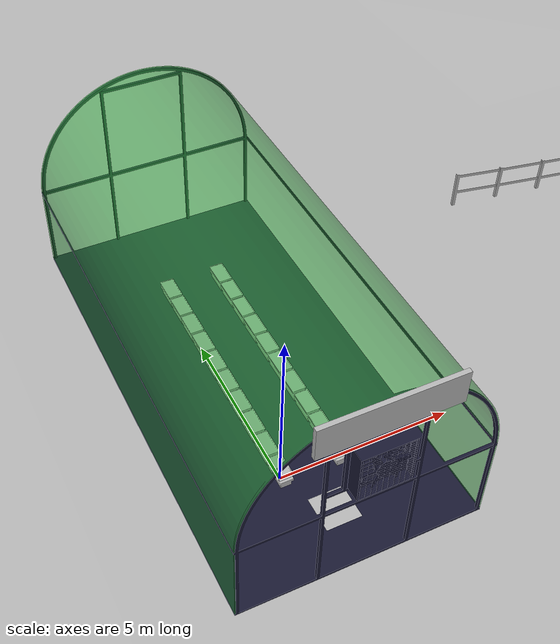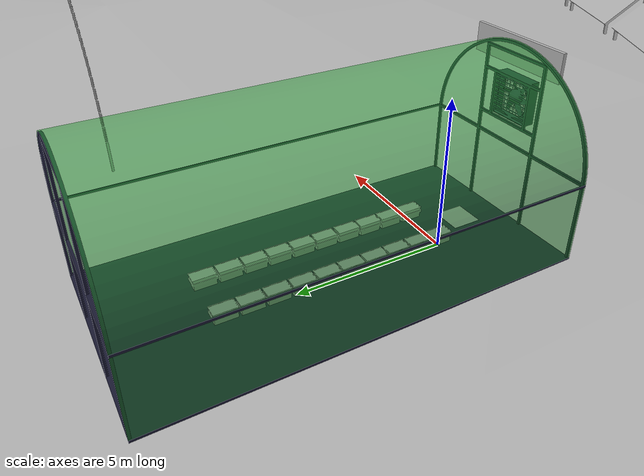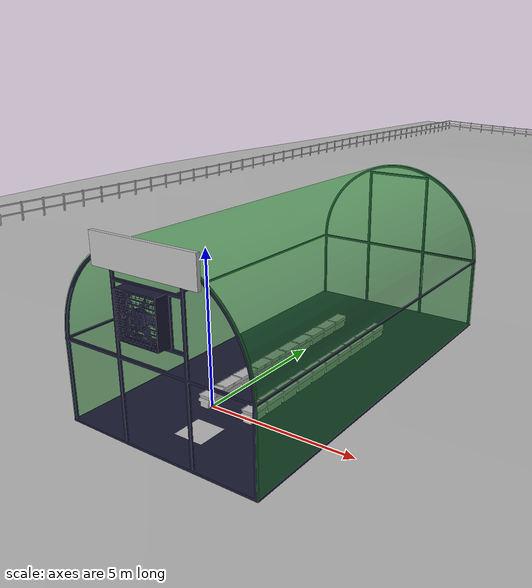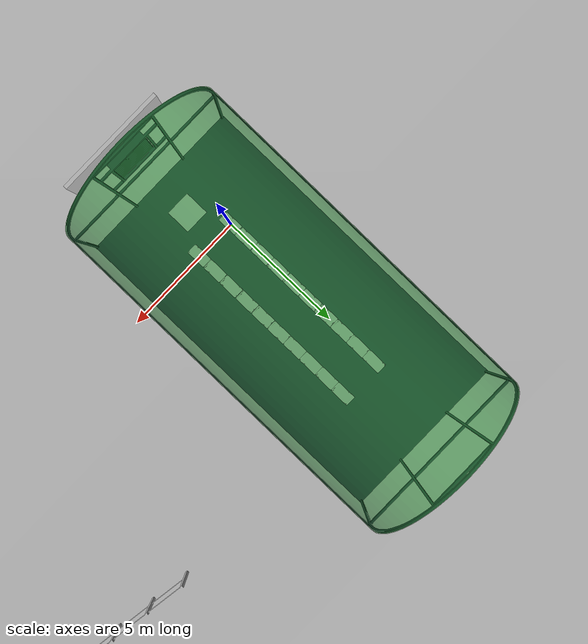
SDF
<sdf version="1.6">
 <world name="default">
  <light name="light0" type="directional">
   <pose>0 -18.818 8 0.75 -0 0</pose>
   <diffuse>0.5 0.5 0.5 1</diffuse>
   <specular>0.1 0.1 0.1 1</specular>
   <direction>0.1 0.1 -0.9</direction>
   <attenuation>
    <range>20</range>
    <constant>0.5</constant>
    <linear>0.01</linear>
    <quadratic>0.001</quadratic>
   </attenuation>
   <cast_shadows>0</cast_shadows>
  </light>
  <light name="light1" type="directional">
   <pose>0 -1.26453 6 0 -0 0</pose>
   <diffuse>0.5 0.5 0.5 1</diffuse>
   <specular>0.1 0.1 0.1 1</specular>
   <direction>0.1 0.1 -0.9</direction>
   <attenuation>
    <range>20</range>
    <constant>0.5</constant>
    <linear>0.01</linear>
    <quadratic>0.001</quadratic>
   </attenuation>
   <cast_shadows>0</cast_shadows>
  </light>
  <light name="light3" type="directional">
   <pose>3.9239 1.64974 4 0 1.2 0</pose>
   <diffuse>0.5 0.5 0.5 1</diffuse>
   <specular>0.1 0.1 0.1 1</specular>
   <direction>0.1 0.1 -0.9</direction>
   <attenuation>
    <range>20</range>
    <constant>0.5</constant>
    <linear>0.01</linear>
    <quadratic>0.001</quadratic>
   </attenuation>
   <cast_shadows>0</cast_shadows>
  </light>
  <light name="light4" type="directional">
   <pose>-2.5 4.649 4 0 -0.95 0</pose>
   <diffuse>0.5 0.5 0.5 1</diffuse>
   <specular>0.1 0.1 0.1 1</specular>
   <direction>0.1 0.1 -0.9</direction>
   <attenuation>
    <range>20</range>
    <constant>0.5</constant>
    <linear>0.01</linear>
    <quadratic>0.001</quadratic>
   </attenuation>
   <cast_shadows>0</cast_shadows>
  </light>
  <light name="light5" type="directional">
   <pose>0.454419 12.4783 5 -0.8 0 0</pose>
   <diffuse>0.5 0.5 0.5 1</diffuse>
   <specular>0.1 0.1 0.1 1</specular>
   <direction>0.1 0.1 -0.9</direction>
   <attenuation>
    <range>20</range>
    <constant>0.5</constant>
    <linear>0.01</linear>
    <quadratic>0.001</quadratic>
   </attenuation>
   <cast_shadows>0</cast_shadows>
  </light>
  <scene><shadows>false</shadows><grid>false</grid><sky><clouds><speed>4</speed></clouds></sky></scene>
  <include><uri>model://farm1</uri><pose>1.424045 -8.25 0.15 -0.02 0.029 0</pose></include>
  <include><uri>model://green_house</uri><pose>10.523 -2.987 0.1 1.57159 -0.001593 -3.14159</pose></include>
  <include><uri>model://trough</uri><name>trough00</name><pose>0 0 0.09 1.57 0 1.57</pose></include>
  <include><uri>model://trough</uri><name>trough01</name><pose>0 0.8 0.09 1.57 0 1.57</pose></include>
  <include><uri>model://trough</uri><name>trough02</name><pose>0 1.6 0.09 1.57 0 1.57</pose></include>
  <include><uri>model://trough</uri><name>trough03</name><pose>0 2.4 0.09 1.57 0 1.57</pose></include>
  <include><uri>model://trough</uri><name>trough04</name><pose>0 3.2 0.09 1.57 0 1.57</pose></include>
  <include><uri>model://trough</uri><name>trough05</name><pose>0 4.0 0.09 1.57 0 1.57</pose></include>
  <include><uri>model://trough</uri><name>trough06</name><pose>0 4.8 0.09 1.57 0 1.57</pose></include>
  <include><uri>model://trough</uri><name>trough07</name><pose>0 5.6 0.09 1.57 0 1.57</pose></include>
  <include><uri>model://trough</uri><name>trough08</name><pose>0 6.4 0.09 1.57 0 1.57</pose></include>
  <include><uri>model://trough</uri><name>trough09</name><pose>0 7.2 0.09 1.57 0 1.57</pose></include>
  <include><uri>model://trough</uri><name>trough10</name><pose>1.62 0 0.09 1.57 0 1.57</pose></include>
  <include><uri>model://trough</uri><name>trough11</name><pose>1.62 0.8 0.09 1.57 0 1.57</pose></include>
  <include><uri>model://trough</uri><name>trough12</name><pose>1.62 1.6 0.09 1.57 0 1.57</pose></include>
  <include><uri>model://trough</uri><name>trough13</name><pose>1.62 2.4 0.09 1.57 0 1.57</pose></include>
  <include><uri>model://trough</uri><name>trough14</name><pose>1.62 3.2 0.09 1.57 0 1.57</pose></include>
  <include><uri>model://trough</uri><name>trough15</name><pose>1.62 4.0 0.09 1.57 0 1.57</pose></include>
  <include><uri>model://trough</uri><name>trough16</name><pose>1.62 4.8 0.09 1.57 0 1.57</pose></include>
  <include><uri>model://trough</uri><name>trough17</name><pose>1.62 5.6 0.09 1.57 0 1.57</pose></include>
  <include><uri>model://trough</uri><name>trough18</name><pose>1.62 6.4 0.09 1.57 0 1.57</pose></include>
  <include><uri>model://trough</uri><name>trough19</name><pose>1.62 7.2 0.09 1.57 0 1.57</pose></include>
  <include><uri>model://Aruco_00</uri><name>Aruco_l00</name><pose>-0.21 0 0.45 0 0 1.57</pose></include>
  <include><uri>model://Aruco_01</uri><name>Aruco_l01</name><pose>-0.21 0.8 0.45 0 0 1.57</pose></include>
  <include><uri>model://Aruco_02</uri><name>Aruco_l02</name><pose>-0.21 1.6 0.45 0 0 1.57</pose></include>
  <include>
   <uri>model://Aruco_03</uri>
   <name>Aruco_l03</name>
   <pose>-0.21 2.4000000000000004 0.45 0 0 1.57</pose>
  </include>
  <include><uri>model://Aruco_04</uri><name>Aruco_l04</name><pose>-0.21 3.2 0.45 0 0 1.57</pose></include>
  <include><uri>model://Aruco_05</uri><name>Aruco_l05</name><pose>-0.21 4.0 0.45 0 0 1.57</pose></include>
  <include><uri>model://Aruco_06</uri><name>Aruco_l06</name><pose>-0.21 4.8 0.45 0 0 1.57</pose></include>
  <include><uri>model://Aruco_00</uri><name>Aruco_r00</name><pose>0.21 0 0.45 0 0 -1.57</pose></include>
  <include><uri>model://Aruco_01</uri><name>Aruco_r01</name><pose>0.21 0.8 0.45 0 0 -1.57</pose></include>
  <include><uri>model://Aruco_02</uri><name>Aruco_r02</name><pose>0.21 1.6 0.45 0 0 -1.57</pose></include>
  <include>
   <uri>model://Aruco_03</uri>
   <name>Aruco_r03</name>
   <pose>0.21 2.4000000000000004 0.45 0 0 -1.57</pose>
  </include>
  <include><uri>model://Aruco_04</uri><name>Aruco_r04</name><pose>0.21 3.2 0.45 0 0 -1.57</pose></include>
  <include><uri>model://Aruco_05</uri><name>Aruco_r05</name><pose>0.21 4.0 0.45 0 0 -1.57</pose></include>
  <include><uri>model://Aruco_06</uri><name>Aruco_r06</name><pose>0.21 4.8 0.45 0 0 -1.57</pose></include>
  <include><uri>model://start_zone</uri><name>start_zone</name><pose>0.8 -1.45 -0.02 0 0 0</pose></include>
 </world>
</sdf>

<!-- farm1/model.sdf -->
<sdf version="1.6">
  <model name="farm">
    <static>true</static>
    <link name="link">
      <collision name="colision1">
        <pose>0 0 0 0 0 0 </pose>
          <geometry>
            <box><size>2.32 1 1</size></box>
          </geometry>

      </collision>

      <visual name="visual1">
        <cast_shadows>false</cast_shadows>
	<pose> 0 0 0 0 0 0</pose>
        <geometry>
          <mesh>
            <uri>model://farm1/meshes/agriculture_world.dae</uri>

          </mesh>
        </geometry>
      </visual>

    </link>
  </model>
</sdf>

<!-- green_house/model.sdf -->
<sdf version="1.6">
  <model name="green_house">
    <static>true</static>

    <link name="link">
      <collision name="collision">
        <geometry>
          <mesh>
             <scale>0.001 0.001 0.001</scale>
            <uri>file://green_house/meshes/greenhouse_eyantra_glass.stl</uri>
          </mesh>
        </geometry>
      </collision>
      <visual name="branch">
        <geometry>
          <mesh>
                <scale>0.001 0.001 0.001</scale>
            <uri>file://green_house/meshes/greenhouse_eyantra_glass.stl</uri>

          </mesh>
        </geometry>

<material>
  <script>
    <name>Gazebo/GreenTransparent</name>
    <uri>file://media/materials/scripts/gazebo.material</uri>
  </script>
</material>

      </visual>
    </link>

    <link name="link2">
      <collision name="collision2">
        <geometry>
          <mesh>
             <scale>0.001 0.001 0.001</scale>
            <uri>file://green_house/meshes/greenhouse_eyantra_skeleton.stl</uri>
          </mesh>
        </geometry>
      </collision>
      <visual name="branch2">
        <geometry>
          <mesh>
                <scale>0.001 0.001 0.001</scale>
            <uri>file://green_house/meshes/greenhouse_eyantra_skeleton.stl</uri>

          </mesh>
        </geometry>

      <material>
          <ambient>0.1 0.1 0.1 1</ambient>
          <diffuse>0.1 0.1 0.2 1</diffuse>
          <specular>0 0 0 0</specular>
          <emissive>0 0 0 1</emissive>
        </material>

      </visual>
    </link>

    <link name="link3">
 <pose>9.7 5.5 -0.2 0 3.14 0</pose>
      <collision name="logo">
        <geometry>
          <mesh>
       <scale>400 400 400</scale>
            <uri>file://green_house/meshes/logo2.dae</uri>
          </mesh>
        </geometry>
      </collision>
      <visual name="logo_c">
        <geometry>
          <mesh>
  <scale>400 400 400</scale>
            <uri>file://green_house/meshes/logo2.dae</uri>

          </mesh>
        </geometry>

      </visual>
    </link>

        <joint name="logo" type="fixed">
            <pose>0 0 0 0 0 0</pose>
            <child>link3</child>
            <parent>link2</parent>

        </joint>

  </model>
</sdf>

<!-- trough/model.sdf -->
<sdf version="1.6">
    <model name="trough">
	   <static>true</static>
      <link name="trough_link">

        <visual name="visual">
          <geometry>
            <mesh><uri>model://trough/meshes/truf_brick.obj</uri></mesh>
          </geometry>
        </visual>

        <collision name="collision">
          <pose>0 0.3 0 0 0 0</pose>
          <geometry>
          <box>
            <size>0.75 0.2 0.42</size>
          </box>
           </geometry>
        </collision>
      </link>

    </model>
</sdf>

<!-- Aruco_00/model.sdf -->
<sdf version="1.6">
  <model name="aruco">
    <static>true</static>
    <link name="link">

      <visual name="visual1">
        <cast_shadows>false</cast_shadows>
	      <pose> 0 0 0 0 0 0</pose>
        <geometry>
          <mesh>
            <uri>model://Aruco_00/meshes/aruco0.obj</uri>
	               <scale>0.05 0.05 0.05</scale>
          </mesh>
        </geometry>
      </visual>

    </link>
  </model>
</sdf>

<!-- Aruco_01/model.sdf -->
<sdf version="1.6">
  <model name="Aruco_01">
    <static>true</static>
    <link name="link">

      <visual name="visual1">
        <cast_shadows>false</cast_shadows>
	      <pose> 0 0 0 0 0 0</pose>
        <geometry>
          <mesh>
            <uri>model://Aruco_01/meshes/aruco0.obj</uri>
	               <scale>0.05 0.05 0.05</scale>
          </mesh>
        </geometry>
      </visual>

    </link>
  </model>
</sdf>

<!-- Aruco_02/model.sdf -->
<sdf version="1.6">
  <model name="aruco">
    <static>true</static>
    <link name="link">

      <visual name="visual1">
        <cast_shadows>false</cast_shadows>
	      <pose> 0 0 0 0 0 0</pose>
        <geometry>
          <mesh>
            <uri>model://Aruco_02/meshes/aruco0.obj</uri>
	               <scale>0.05 0.05 0.05</scale>
          </mesh>
        </geometry>
      </visual>

    </link>
  </model>
</sdf>

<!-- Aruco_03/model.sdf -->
<sdf version="1.6">
  <model name="aruco">
    <static>true</static>
    <link name="link">

      <visual name="visual1">
        <cast_shadows>false</cast_shadows>
	      <pose> 0 0 0 0 0 0</pose>
        <geometry>
          <mesh>
            <uri>model://Aruco_03/meshes/aruco0.obj</uri>
	               <scale>0.05 0.05 0.05</scale>
          </mesh>
        </geometry>
      </visual>

    </link>
  </model>
</sdf>

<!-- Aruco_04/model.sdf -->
<sdf version="1.6">
  <model name="aruco">
    <static>true</static>
    <link name="link">

      <visual name="visual1">
        <cast_shadows>false</cast_shadows>
	      <pose> 0 0 0 0 0 0</pose>
        <geometry>
          <mesh>
            <uri>model://Aruco_04/meshes/aruco0.obj</uri>
	               <scale>0.05 0.05 0.05</scale>
          </mesh>
        </geometry>
      </visual>

    </link>
  </model>
</sdf>

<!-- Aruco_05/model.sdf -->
<sdf version="1.6">
  <model name="aruco">
    <static>true</static>
    <link name="link">

      <visual name="visual1">
        <cast_shadows>false</cast_shadows>
	      <pose> 0 0 0 0 0 0</pose>
        <geometry>
          <mesh>
            <uri>model://Aruco_05/meshes/aruco0.obj</uri>
	               <scale>0.05 0.05 0.05</scale>
          </mesh>
        </geometry>
      </visual>

    </link>
  </model>
</sdf>

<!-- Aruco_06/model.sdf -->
<sdf version="1.6">
  <model name="aruco">
    <static>true</static>
    <link name="link">

      <visual name="visual1">
        <cast_shadows>false</cast_shadows>
	      <pose> 0 0 0 0 0 0</pose>
        <geometry>
          <mesh>
            <uri>model://Aruco_06/meshes/aruco0.obj</uri>
	               <scale>0.05 0.05 0.05</scale>
          </mesh>
        </geometry>
      </visual>

    </link>
  </model>
</sdf>

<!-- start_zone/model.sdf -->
<sdf version="1.6">
  <model name="aruco">
    <static>true</static>
    <link name="link">

      <visual name="visual1">
        <cast_shadows>false</cast_shadows>
        <pose> 0 0 0.1 1.57 0 0</pose>
        <geometry>
          <mesh>
            <uri>model://start_zone/meshes/start_zone.obj</uri>
            <scale>0.5 0.5 0.5</scale>

          </mesh>
        </geometry>
      </visual>

    </link>
  </model>
</sdf>
